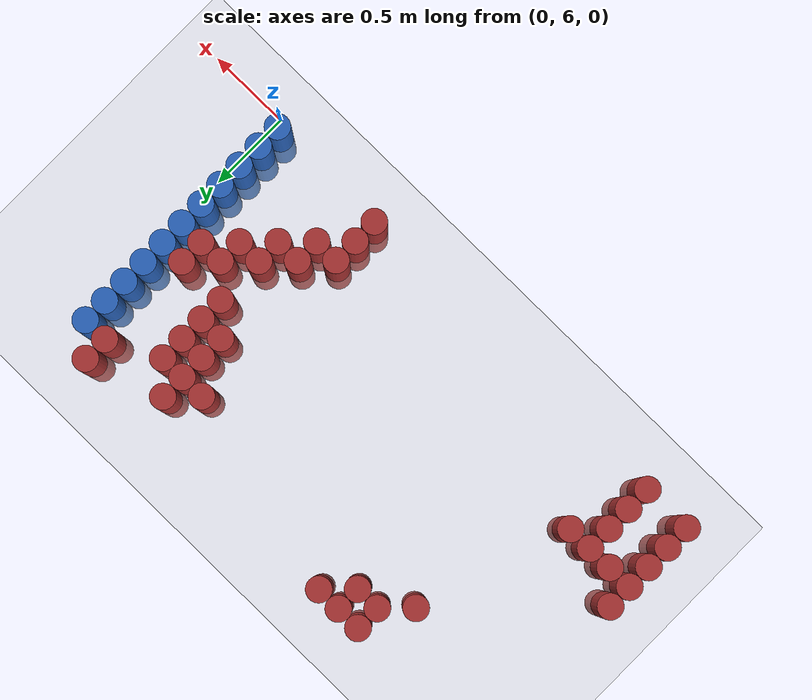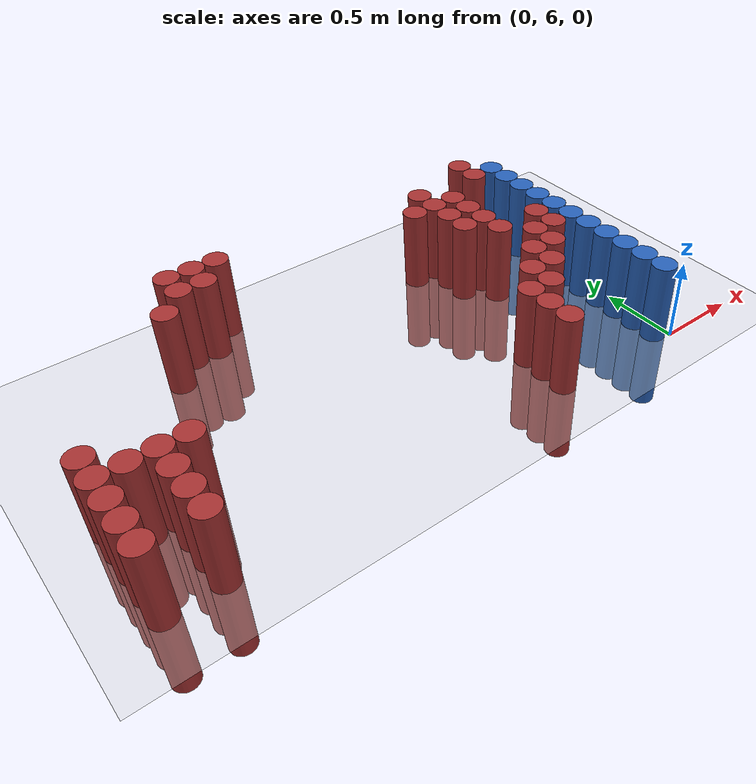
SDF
<sdf version="1.6">
 <world name="default">
  <model name="ground_plane">
   <static>1</static>
   <link name="link">
    <collision name="collision">
     <geometry><plane><normal>0 0 1</normal><size>100 100</size></plane></geometry>
     <surface><friction><ode><mu>100</mu><mu2>50</mu2></ode></friction></surface>
    </collision>
    <visual name="visual">
     <cast_shadows>0</cast_shadows>
     <geometry><plane><normal>0 0 1</normal><size>100 100</size></plane></geometry>
     <material>
      <script><uri>file://media/materials/scripts/gazebo.material</uri><name>Gazebo/Grey</name></script>
     </material>
    </visual>
   </link>
  </model>
  <model name="unit_cylinder_180">
   <static>1</static>
   <pose>-3.225000 6.075000 0.000000 0.000000 0.000000 0.000000</pose>
   <link name="link">
    <inertial>
     <mass>1</mass>
     <inertia><ixx>0.145833</ixx><ixy>0</ixy><ixz>0</ixz><iyy>0.145833</iyy><iyz>0</iyz><izz>0.125</izz></inertia>
    </inertial>
    <collision name="collision">
     <geometry><cylinder><radius>0.075000</radius><length>1</length></cylinder></geometry>
    </collision>
    <visual name="visual">
     <geometry><cylinder><radius>0.075000</radius><length>1</length></cylinder></geometry>
     <material>
      <ambient>0.648000 0.192000 0.192000 1</ambient>
      <diffuse>0.648000 0.192000 0.192000 1</diffuse>
     </material>
     <material>
      <script><name>Gazebo/Grey</name><uri>file://media/materials/scripts/gazebo.material</uri></script>
     </material>
    </visual>
   </link>
  </model>
  <model name="unit_cylinder_181">
   <static>1</static>
   <pose>-3.225000 6.225000 0.000000 0.000000 0.000000 0.000000</pose>
   <link name="link">
    <inertial>
     <mass>1</mass>
     <inertia><ixx>0.145833</ixx><ixy>0</ixy><ixz>0</ixz><iyy>0.145833</iyy><iyz>0</iyz><izz>0.125</izz></inertia>
    </inertial>
    <collision name="collision">
     <geometry><cylinder><radius>0.075000</radius><length>1</length></cylinder></geometry>
    </collision>
    <visual name="visual">
     <geometry><cylinder><radius>0.075000</radius><length>1</length></cylinder></geometry>
     <material>
      <ambient>0.648000 0.192000 0.192000 1</ambient>
      <diffuse>0.648000 0.192000 0.192000 1</diffuse>
     </material>
     <material>
      <script><name>Gazebo/Grey</name><uri>file://media/materials/scripts/gazebo.material</uri></script>
     </material>
    </visual>
   </link>
  </model>
  <model name="unit_cylinder_182">
   <static>1</static>
   <pose>-3.225000 6.375000 0.000000 0.000000 0.000000 0.000000</pose>
   <link name="link">
    <inertial>
     <mass>1</mass>
     <inertia><ixx>0.145833</ixx><ixy>0</ixy><ixz>0</ixz><iyy>0.145833</iyy><iyz>0</iyz><izz>0.125</izz></inertia>
    </inertial>
    <collision name="collision">
     <geometry><cylinder><radius>0.075000</radius><length>1</length></cylinder></geometry>
    </collision>
    <visual name="visual">
     <geometry><cylinder><radius>0.075000</radius><length>1</length></cylinder></geometry>
     <material>
      <ambient>0.648000 0.192000 0.192000 1</ambient>
      <diffuse>0.648000 0.192000 0.192000 1</diffuse>
     </material>
     <material>
      <script><name>Gazebo/Grey</name><uri>file://media/materials/scripts/gazebo.material</uri></script>
     </material>
    </visual>
   </link>
  </model>
  <model name="unit_cylinder_183">
   <static>1</static>
   <pose>-3.225000 6.525000 0.000000 0.000000 0.000000 0.000000</pose>
   <link name="link">
    <inertial>
     <mass>1</mass>
     <inertia><ixx>0.145833</ixx><ixy>0</ixy><ixz>0</ixz><iyy>0.145833</iyy><iyz>0</iyz><izz>0.125</izz></inertia>
    </inertial>
    <collision name="collision">
     <geometry><cylinder><radius>0.075000</radius><length>1</length></cylinder></geometry>
    </collision>
    <visual name="visual">
     <geometry><cylinder><radius>0.075000</radius><length>1</length></cylinder></geometry>
     <material>
      <ambient>0.648000 0.192000 0.192000 1</ambient>
      <diffuse>0.648000 0.192000 0.192000 1</diffuse>
     </material>
     <material>
      <script><name>Gazebo/Grey</name><uri>file://media/materials/scripts/gazebo.material</uri></script>
     </material>
    </visual>
   </link>
  </model>
  <model name="unit_cylinder_184">
   <static>1</static>
   <pose>-3.225000 6.675000 0.000000 0.000000 0.000000 0.000000</pose>
   <link name="link">
    <inertial>
     <mass>1</mass>
     <inertia><ixx>0.145833</ixx><ixy>0</ixy><ixz>0</ixz><iyy>0.145833</iyy><iyz>0</iyz><izz>0.125</izz></inertia>
    </inertial>
    <collision name="collision">
     <geometry><cylinder><radius>0.075000</radius><length>1</length></cylinder></geometry>
    </collision>
    <visual name="visual">
     <geometry><cylinder><radius>0.075000</radius><length>1</length></cylinder></geometry>
     <material>
      <ambient>0.648000 0.192000 0.192000 1</ambient>
      <diffuse>0.648000 0.192000 0.192000 1</diffuse>
     </material>
     <material>
      <script><name>Gazebo/Grey</name><uri>file://media/materials/scripts/gazebo.material</uri></script>
     </material>
    </visual>
   </link>
  </model>
  <model name="unit_cylinder_192">
   <static>1</static>
   <pose>-3.075000 6.525000 0.000000 0.000000 0.000000 0.000000</pose>
   <link name="link">
    <inertial>
     <mass>1</mass>
     <inertia><ixx>0.145833</ixx><ixy>0</ixy><ixz>0</ixz><iyy>0.145833</iyy><iyz>0</iyz><izz>0.125</izz></inertia>
    </inertial>
    <collision name="collision">
     <geometry><cylinder><radius>0.075000</radius><length>1</length></cylinder></geometry>
    </collision>
    <visual name="visual">
     <geometry><cylinder><radius>0.075000</radius><length>1</length></cylinder></geometry>
     <material>
      <ambient>0.648000 0.192000 0.192000 1</ambient>
      <diffuse>0.648000 0.192000 0.192000 1</diffuse>
     </material>
     <material>
      <script><name>Gazebo/Grey</name><uri>file://media/materials/scripts/gazebo.material</uri></script>
     </material>
    </visual>
   </link>
  </model>
  <model name="unit_cylinder_199">
   <static>1</static>
   <pose>-2.925000 6.075000 0.000000 0.000000 0.000000 0.000000</pose>
   <link name="link">
    <inertial>
     <mass>1</mass>
     <inertia><ixx>0.145833</ixx><ixy>0</ixy><ixz>0</ixz><iyy>0.145833</iyy><iyz>0</iyz><izz>0.125</izz></inertia>
    </inertial>
    <collision name="collision">
     <geometry><cylinder><radius>0.075000</radius><length>1</length></cylinder></geometry>
    </collision>
    <visual name="visual">
     <geometry><cylinder><radius>0.075000</radius><length>1</length></cylinder></geometry>
     <material>
      <ambient>0.648000 0.192000 0.192000 1</ambient>
      <diffuse>0.648000 0.192000 0.192000 1</diffuse>
     </material>
     <material>
      <script><name>Gazebo/Grey</name><uri>file://media/materials/scripts/gazebo.material</uri></script>
     </material>
    </visual>
   </link>
  </model>
  <model name="unit_cylinder_200">
   <static>1</static>
   <pose>-2.925000 6.225000 0.000000 0.000000 0.000000 0.000000</pose>
   <link name="link">
    <inertial>
     <mass>1</mass>
     <inertia><ixx>0.145833</ixx><ixy>0</ixy><ixz>0</ixz><iyy>0.145833</iyy><iyz>0</iyz><izz>0.125</izz></inertia>
    </inertial>
    <collision name="collision">
     <geometry><cylinder><radius>0.075000</radius><length>1</length></cylinder></geometry>
    </collision>
    <visual name="visual">
     <geometry><cylinder><radius>0.075000</radius><length>1</length></cylinder></geometry>
     <material>
      <ambient>0.648000 0.192000 0.192000 1</ambient>
      <diffuse>0.648000 0.192000 0.192000 1</diffuse>
     </material>
     <material>
      <script><name>Gazebo/Grey</name><uri>file://media/materials/scripts/gazebo.material</uri></script>
     </material>
    </visual>
   </link>
  </model>
  <model name="unit_cylinder_201">
   <static>1</static>
   <pose>-2.925000 6.375000 0.000000 0.000000 0.000000 0.000000</pose>
   <link name="link">
    <inertial>
     <mass>1</mass>
     <inertia><ixx>0.145833</ixx><ixy>0</ixy><ixz>0</ixz><iyy>0.145833</iyy><iyz>0</iyz><izz>0.125</izz></inertia>
    </inertial>
    <collision name="collision">
     <geometry><cylinder><radius>0.075000</radius><length>1</length></cylinder></geometry>
    </collision>
    <visual name="visual">
     <geometry><cylinder><radius>0.075000</radius><length>1</length></cylinder></geometry>
     <material>
      <ambient>0.648000 0.192000 0.192000 1</ambient>
      <diffuse>0.648000 0.192000 0.192000 1</diffuse>
     </material>
     <material>
      <script><name>Gazebo/Grey</name><uri>file://media/materials/scripts/gazebo.material</uri></script>
     </material>
    </visual>
   </link>
  </model>
  <model name="unit_cylinder_202">
   <static>1</static>
   <pose>-2.925000 6.525000 0.000000 0.000000 0.000000 0.000000</pose>
   <link name="link">
    <inertial>
     <mass>1</mass>
     <inertia><ixx>0.145833</ixx><ixy>0</ixy><ixz>0</ixz><iyy>0.145833</iyy><iyz>0</iyz><izz>0.125</izz></inertia>
    </inertial>
    <collision name="collision">
     <geometry><cylinder><radius>0.075000</radius><length>1</length></cylinder></geometry>
    </collision>
    <visual name="visual">
     <geometry><cylinder><radius>0.075000</radius><length>1</length></cylinder></geometry>
     <material>
      <ambient>0.648000 0.192000 0.192000 1</ambient>
      <diffuse>0.648000 0.192000 0.192000 1</diffuse>
     </material>
     <material>
      <script><name>Gazebo/Grey</name><uri>file://media/materials/scripts/gazebo.material</uri></script>
     </material>
    </visual>
   </link>
  </model>
  <model name="unit_cylinder_204">
   <static>1</static>
   <pose>-2.775000 6.525000 0.000000 0.000000 0.000000 0.000000</pose>
   <link name="link">
    <inertial>
     <mass>1</mass>
     <inertia><ixx>0.145833</ixx><ixy>0</ixy><ixz>0</ixz><iyy>0.145833</iyy><iyz>0</iyz><izz>0.125</izz></inertia>
    </inertial>
    <collision name="collision">
     <geometry><cylinder><radius>0.075000</radius><length>1</length></cylinder></geometry>
    </collision>
    <visual name="visual">
     <geometry><cylinder><radius>0.075000</radius><length>1</length></cylinder></geometry>
     <material>
      <ambient>0.648000 0.192000 0.192000 1</ambient>
      <diffuse>0.648000 0.192000 0.192000 1</diffuse>
     </material>
     <material>
      <script><name>Gazebo/Grey</name><uri>file://media/materials/scripts/gazebo.material</uri></script>
     </material>
    </visual>
   </link>
  </model>
  <model name="unit_cylinder_208">
   <static>1</static>
   <pose>-2.475000 7.425000 0.000000 0.000000 0.000000 0.000000</pose>
   <link name="link">
    <inertial>
     <mass>1</mass>
     <inertia><ixx>0.145833</ixx><ixy>0</ixy><ixz>0</ixz><iyy>0.145833</iyy><iyz>0</iyz><izz>0.125</izz></inertia>
    </inertial>
    <collision name="collision">
     <geometry><cylinder><radius>0.075000</radius><length>1</length></cylinder></geometry>
    </collision>
    <visual name="visual">
     <geometry><cylinder><radius>0.075000</radius><length>1</length></cylinder></geometry>
     <material>
      <ambient>0.648000 0.192000 0.192000 1</ambient>
      <diffuse>0.648000 0.192000 0.192000 1</diffuse>
     </material>
     <material>
      <script><name>Gazebo/Grey</name><uri>file://media/materials/scripts/gazebo.material</uri></script>
     </material>
    </visual>
   </link>
  </model>
  <model name="unit_cylinder_211">
   <static>1</static>
   <pose>-2.325000 7.575000 0.000000 0.000000 0.000000 0.000000</pose>
   <link name="link">
    <inertial>
     <mass>1</mass>
     <inertia><ixx>0.145833</ixx><ixy>0</ixy><ixz>0</ixz><iyy>0.145833</iyy><iyz>0</iyz><izz>0.125</izz></inertia>
    </inertial>
    <collision name="collision">
     <geometry><cylinder><radius>0.075000</radius><length>1</length></cylinder></geometry>
    </collision>
    <visual name="visual">
     <geometry><cylinder><radius>0.075000</radius><length>1</length></cylinder></geometry>
     <material>
      <ambient>0.648000 0.192000 0.192000 1</ambient>
      <diffuse>0.648000 0.192000 0.192000 1</diffuse>
     </material>
     <material>
      <script><name>Gazebo/Grey</name><uri>file://media/materials/scripts/gazebo.material</uri></script>
     </material>
    </visual>
   </link>
  </model>
  <model name="unit_cylinder_212">
   <static>1</static>
   <pose>-2.325000 7.725000 0.000000 0.000000 0.000000 0.000000</pose>
   <link name="link">
    <inertial>
     <mass>1</mass>
     <inertia><ixx>0.145833</ixx><ixy>0</ixy><ixz>0</ixz><iyy>0.145833</iyy><iyz>0</iyz><izz>0.125</izz></inertia>
    </inertial>
    <collision name="collision">
     <geometry><cylinder><radius>0.075000</radius><length>1</length></cylinder></geometry>
    </collision>
    <visual name="visual">
     <geometry><cylinder><radius>0.075000</radius><length>1</length></cylinder></geometry>
     <material>
      <ambient>0.648000 0.192000 0.192000 1</ambient>
      <diffuse>0.648000 0.192000 0.192000 1</diffuse>
     </material>
     <material>
      <script><name>Gazebo/Grey</name><uri>file://media/materials/scripts/gazebo.material</uri></script>
     </material>
    </visual>
   </link>
  </model>
  <model name="unit_cylinder_215">
   <static>1</static>
   <pose>-2.175000 7.575000 0.000000 0.000000 0.000000 0.000000</pose>
   <link name="link">
    <inertial>
     <mass>1</mass>
     <inertia><ixx>0.145833</ixx><ixy>0</ixy><ixz>0</ixz><iyy>0.145833</iyy><iyz>0</iyz><izz>0.125</izz></inertia>
    </inertial>
    <collision name="collision">
     <geometry><cylinder><radius>0.075000</radius><length>1</length></cylinder></geometry>
    </collision>
    <visual name="visual">
     <geometry><cylinder><radius>0.075000</radius><length>1</length></cylinder></geometry>
     <material>
      <ambient>0.648000 0.192000 0.192000 1</ambient>
      <diffuse>0.648000 0.192000 0.192000 1</diffuse>
     </material>
     <material>
      <script><name>Gazebo/Grey</name><uri>file://media/materials/scripts/gazebo.material</uri></script>
     </material>
    </visual>
   </link>
  </model>
  <model name="unit_cylinder_216">
   <static>1</static>
   <pose>-2.175000 7.725000 0.000000 0.000000 0.000000 0.000000</pose>
   <link name="link">
    <inertial>
     <mass>1</mass>
     <inertia><ixx>0.145833</ixx><ixy>0</ixy><ixz>0</ixz><iyy>0.145833</iyy><iyz>0</iyz><izz>0.125</izz></inertia>
    </inertial>
    <collision name="collision">
     <geometry><cylinder><radius>0.075000</radius><length>1</length></cylinder></geometry>
    </collision>
    <visual name="visual">
     <geometry><cylinder><radius>0.075000</radius><length>1</length></cylinder></geometry>
     <material>
      <ambient>0.648000 0.192000 0.192000 1</ambient>
      <diffuse>0.648000 0.192000 0.192000 1</diffuse>
     </material>
     <material>
      <script><name>Gazebo/Grey</name><uri>file://media/materials/scripts/gazebo.material</uri></script>
     </material>
    </visual>
   </link>
  </model>
  <model name="unit_cylinder_217">
   <static>1</static>
   <pose>-2.025000 7.725000 0.000000 0.000000 0.000000 0.000000</pose>
   <link name="link">
    <inertial>
     <mass>1</mass>
     <inertia><ixx>0.145833</ixx><ixy>0</ixy><ixz>0</ixz><iyy>0.145833</iyy><iyz>0</iyz><izz>0.125</izz></inertia>
    </inertial>
    <collision name="collision">
     <geometry><cylinder><radius>0.075000</radius><length>1</length></cylinder></geometry>
    </collision>
    <visual name="visual">
     <geometry><cylinder><radius>0.075000</radius><length>1</length></cylinder></geometry>
     <material>
      <ambient>0.648000 0.192000 0.192000 1</ambient>
      <diffuse>0.648000 0.192000 0.192000 1</diffuse>
     </material>
     <material>
      <script><name>Gazebo/Grey</name><uri>file://media/materials/scripts/gazebo.material</uri></script>
     </material>
    </visual>
   </link>
  </model>
  <model name="unit_cylinder_228">
   <static>1</static>
   <pose>-0.825000 6.075000 0.000000 0.000000 0.000000 0.000000</pose>
   <link name="link">
    <inertial>
     <mass>1</mass>
     <inertia><ixx>0.145833</ixx><ixy>0</ixy><ixz>0</ixz><iyy>0.145833</iyy><iyz>0</iyz><izz>0.125</izz></inertia>
    </inertial>
    <collision name="collision">
     <geometry><cylinder><radius>0.075000</radius><length>1</length></cylinder></geometry>
    </collision>
    <visual name="visual">
     <geometry><cylinder><radius>0.075000</radius><length>1</length></cylinder></geometry>
     <material>
      <ambient>0.648000 0.192000 0.192000 1</ambient>
      <diffuse>0.648000 0.192000 0.192000 1</diffuse>
     </material>
     <material>
      <script><name>Gazebo/Grey</name><uri>file://media/materials/scripts/gazebo.material</uri></script>
     </material>
    </visual>
   </link>
  </model>
  <model name="unit_cylinder_229">
   <static>1</static>
   <pose>-0.825000 6.225000 0.000000 0.000000 0.000000 0.000000</pose>
   <link name="link">
    <inertial>
     <mass>1</mass>
     <inertia><ixx>0.145833</ixx><ixy>0</ixy><ixz>0</ixz><iyy>0.145833</iyy><iyz>0</iyz><izz>0.125</izz></inertia>
    </inertial>
    <collision name="collision">
     <geometry><cylinder><radius>0.075000</radius><length>1</length></cylinder></geometry>
    </collision>
    <visual name="visual">
     <geometry><cylinder><radius>0.075000</radius><length>1</length></cylinder></geometry>
     <material>
      <ambient>0.648000 0.192000 0.192000 1</ambient>
      <diffuse>0.648000 0.192000 0.192000 1</diffuse>
     </material>
     <material>
      <script><name>Gazebo/Grey</name><uri>file://media/materials/scripts/gazebo.material</uri></script>
     </material>
    </visual>
   </link>
  </model>
  <model name="unit_cylinder_230">
   <static>1</static>
   <pose>-0.825000 6.375000 0.000000 0.000000 0.000000 0.000000</pose>
   <link name="link">
    <inertial>
     <mass>1</mass>
     <inertia><ixx>0.145833</ixx><ixy>0</ixy><ixz>0</ixz><iyy>0.145833</iyy><iyz>0</iyz><izz>0.125</izz></inertia>
    </inertial>
    <collision name="collision">
     <geometry><cylinder><radius>0.075000</radius><length>1</length></cylinder></geometry>
    </collision>
    <visual name="visual">
     <geometry><cylinder><radius>0.075000</radius><length>1</length></cylinder></geometry>
     <material>
      <ambient>0.648000 0.192000 0.192000 1</ambient>
      <diffuse>0.648000 0.192000 0.192000 1</diffuse>
     </material>
     <material>
      <script><name>Gazebo/Grey</name><uri>file://media/materials/scripts/gazebo.material</uri></script>
     </material>
    </visual>
   </link>
  </model>
  <model name="unit_cylinder_231">
   <static>1</static>
   <pose>-0.825000 7.425000 0.000000 0.000000 0.000000 0.000000</pose>
   <link name="link">
    <inertial>
     <mass>1</mass>
     <inertia><ixx>0.145833</ixx><ixy>0</ixy><ixz>0</ixz><iyy>0.145833</iyy><iyz>0</iyz><izz>0.125</izz></inertia>
    </inertial>
    <collision name="collision">
     <geometry><cylinder><radius>0.075000</radius><length>1</length></cylinder></geometry>
    </collision>
    <visual name="visual">
     <geometry><cylinder><radius>0.075000</radius><length>1</length></cylinder></geometry>
     <material>
      <ambient>0.648000 0.192000 0.192000 1</ambient>
      <diffuse>0.648000 0.192000 0.192000 1</diffuse>
     </material>
     <material>
      <script><name>Gazebo/Grey</name><uri>file://media/materials/scripts/gazebo.material</uri></script>
     </material>
    </visual>
   </link>
  </model>
  <model name="unit_cylinder_234">
   <static>1</static>
   <pose>-0.675000 6.375000 0.000000 0.000000 0.000000 0.000000</pose>
   <link name="link">
    <inertial>
     <mass>1</mass>
     <inertia><ixx>0.145833</ixx><ixy>0</ixy><ixz>0</ixz><iyy>0.145833</iyy><iyz>0</iyz><izz>0.125</izz></inertia>
    </inertial>
    <collision name="collision">
     <geometry><cylinder><radius>0.075000</radius><length>1</length></cylinder></geometry>
    </collision>
    <visual name="visual">
     <geometry><cylinder><radius>0.075000</radius><length>1</length></cylinder></geometry>
     <material>
      <ambient>0.648000 0.192000 0.192000 1</ambient>
      <diffuse>0.648000 0.192000 0.192000 1</diffuse>
     </material>
     <material>
      <script><name>Gazebo/Grey</name><uri>file://media/materials/scripts/gazebo.material</uri></script>
     </material>
    </visual>
   </link>
  </model>
  <model name="unit_cylinder_235">
   <static>1</static>
   <pose>-0.675000 6.525000 0.000000 0.000000 0.000000 0.000000</pose>
   <link name="link">
    <inertial>
     <mass>1</mass>
     <inertia><ixx>0.145833</ixx><ixy>0</ixy><ixz>0</ixz><iyy>0.145833</iyy><iyz>0</iyz><izz>0.125</izz></inertia>
    </inertial>
    <collision name="collision">
     <geometry><cylinder><radius>0.075000</radius><length>1</length></cylinder></geometry>
    </collision>
    <visual name="visual">
     <geometry><cylinder><radius>0.075000</radius><length>1</length></cylinder></geometry>
     <material>
      <ambient>0.648000 0.192000 0.192000 1</ambient>
      <diffuse>0.648000 0.192000 0.192000 1</diffuse>
     </material>
     <material>
      <script><name>Gazebo/Grey</name><uri>file://media/materials/scripts/gazebo.material</uri></script>
     </material>
    </visual>
   </link>
  </model>
  <model name="unit_cylinder_236">
   <static>1</static>
   <pose>-0.675000 7.125000 0.000000 0.000000 0.000000 0.000000</pose>
   <link name="link">
    <inertial>
     <mass>1</mass>
     <inertia><ixx>0.145833</ixx><ixy>0</ixy><ixz>0</ixz><iyy>0.145833</iyy><iyz>0</iyz><izz>0.125</izz></inertia>
    </inertial>
    <collision name="collision">
     <geometry><cylinder><radius>0.075000</radius><length>1</length></cylinder></geometry>
    </collision>
    <visual name="visual">
     <geometry><cylinder><radius>0.075000</radius><length>1</length></cylinder></geometry>
     <material>
      <ambient>0.648000 0.192000 0.192000 1</ambient>
      <diffuse>0.648000 0.192000 0.192000 1</diffuse>
     </material>
     <material>
      <script><name>Gazebo/Grey</name><uri>file://media/materials/scripts/gazebo.material</uri></script>
     </material>
    </visual>
   </link>
  </model>
  <model name="unit_cylinder_237">
   <static>1</static>
   <pose>-0.675000 7.275000 0.000000 0.000000 0.000000 0.000000</pose>
   <link name="link">
    <inertial>
     <mass>1</mass>
     <inertia><ixx>0.145833</ixx><ixy>0</ixy><ixz>0</ixz><iyy>0.145833</iyy><iyz>0</iyz><izz>0.125</izz></inertia>
    </inertial>
    <collision name="collision">
     <geometry><cylinder><radius>0.075000</radius><length>1</length></cylinder></geometry>
    </collision>
    <visual name="visual">
     <geometry><cylinder><radius>0.075000</radius><length>1</length></cylinder></geometry>
     <material>
      <ambient>0.648000 0.192000 0.192000 1</ambient>
      <diffuse>0.648000 0.192000 0.192000 1</diffuse>
     </material>
     <material>
      <script><name>Gazebo/Grey</name><uri>file://media/materials/scripts/gazebo.material</uri></script>
     </material>
    </visual>
   </link>
  </model>
  <model name="unit_cylinder_238">
   <static>1</static>
   <pose>-0.675000 7.425000 0.000000 0.000000 0.000000 0.000000</pose>
   <link name="link">
    <inertial>
     <mass>1</mass>
     <inertia><ixx>0.145833</ixx><ixy>0</ixy><ixz>0</ixz><iyy>0.145833</iyy><iyz>0</iyz><izz>0.125</izz></inertia>
    </inertial>
    <collision name="collision">
     <geometry><cylinder><radius>0.075000</radius><length>1</length></cylinder></geometry>
    </collision>
    <visual name="visual">
     <geometry><cylinder><radius>0.075000</radius><length>1</length></cylinder></geometry>
     <material>
      <ambient>0.648000 0.192000 0.192000 1</ambient>
      <diffuse>0.648000 0.192000 0.192000 1</diffuse>
     </material>
     <material>
      <script><name>Gazebo/Grey</name><uri>file://media/materials/scripts/gazebo.material</uri></script>
     </material>
    </visual>
   </link>
  </model>
  <model name="unit_cylinder_239">
   <static>1</static>
   <pose>-0.675000 7.575000 0.000000 0.000000 0.000000 0.000000</pose>
   <link name="link">
    <inertial>
     <mass>1</mass>
     <inertia><ixx>0.145833</ixx><ixy>0</ixy><ixz>0</ixz><iyy>0.145833</iyy><iyz>0</iyz><izz>0.125</izz></inertia>
    </inertial>
    <collision name="collision">
     <geometry><cylinder><radius>0.075000</radius><length>1</length></cylinder></geometry>
    </collision>
    <visual name="visual">
     <geometry><cylinder><radius>0.075000</radius><length>1</length></cylinder></geometry>
     <material>
      <ambient>0.648000 0.192000 0.192000 1</ambient>
      <diffuse>0.648000 0.192000 0.192000 1</diffuse>
     </material>
     <material>
      <script><name>Gazebo/Grey</name><uri>file://media/materials/scripts/gazebo.material</uri></script>
     </material>
    </visual>
   </link>
  </model>
  <model name="unit_cylinder_241">
   <static>1</static>
   <pose>-0.525000 6.525000 0.000000 0.000000 0.000000 0.000000</pose>
   <link name="link">
    <inertial>
     <mass>1</mass>
     <inertia><ixx>0.145833</ixx><ixy>0</ixy><ixz>0</ixz><iyy>0.145833</iyy><iyz>0</iyz><izz>0.125</izz></inertia>
    </inertial>
    <collision name="collision">
     <geometry><cylinder><radius>0.075000</radius><length>1</length></cylinder></geometry>
    </collision>
    <visual name="visual">
     <geometry><cylinder><radius>0.075000</radius><length>1</length></cylinder></geometry>
     <material>
      <ambient>0.648000 0.192000 0.192000 1</ambient>
      <diffuse>0.648000 0.192000 0.192000 1</diffuse>
     </material>
     <material>
      <script><name>Gazebo/Grey</name><uri>file://media/materials/scripts/gazebo.material</uri></script>
     </material>
    </visual>
   </link>
  </model>
  <model name="unit_cylinder_242">
   <static>1</static>
   <pose>-0.525000 6.675000 0.000000 0.000000 0.000000 0.000000</pose>
   <link name="link">
    <inertial>
     <mass>1</mass>
     <inertia><ixx>0.145833</ixx><ixy>0</ixy><ixz>0</ixz><iyy>0.145833</iyy><iyz>0</iyz><izz>0.125</izz></inertia>
    </inertial>
    <collision name="collision">
     <geometry><cylinder><radius>0.075000</radius><length>1</length></cylinder></geometry>
    </collision>
    <visual name="visual">
     <geometry><cylinder><radius>0.075000</radius><length>1</length></cylinder></geometry>
     <material>
      <ambient>0.648000 0.192000 0.192000 1</ambient>
      <diffuse>0.648000 0.192000 0.192000 1</diffuse>
     </material>
     <material>
      <script><name>Gazebo/Grey</name><uri>file://media/materials/scripts/gazebo.material</uri></script>
     </material>
    </visual>
   </link>
  </model>
  <model name="unit_cylinder_243">
   <static>1</static>
   <pose>-0.525000 6.975000 0.000000 0.000000 0.000000 0.000000</pose>
   <link name="link">
    <inertial>
     <mass>1</mass>
     <inertia><ixx>0.145833</ixx><ixy>0</ixy><ixz>0</ixz><iyy>0.145833</iyy><iyz>0</iyz><izz>0.125</izz></inertia>
    </inertial>
    <collision name="collision">
     <geometry><cylinder><radius>0.075000</radius><length>1</length></cylinder></geometry>
    </collision>
    <visual name="visual">
     <geometry><cylinder><radius>0.075000</radius><length>1</length></cylinder></geometry>
     <material>
      <ambient>0.648000 0.192000 0.192000 1</ambient>
      <diffuse>0.648000 0.192000 0.192000 1</diffuse>
     </material>
     <material>
      <script><name>Gazebo/Grey</name><uri>file://media/materials/scripts/gazebo.material</uri></script>
     </material>
    </visual>
   </link>
  </model>
  <model name="unit_cylinder_244">
   <static>1</static>
   <pose>-0.525000 7.125000 0.000000 0.000000 0.000000 0.000000</pose>
   <link name="link">
    <inertial>
     <mass>1</mass>
     <inertia><ixx>0.145833</ixx><ixy>0</ixy><ixz>0</ixz><iyy>0.145833</iyy><iyz>0</iyz><izz>0.125</izz></inertia>
    </inertial>
    <collision name="collision">
     <geometry><cylinder><radius>0.075000</radius><length>1</length></cylinder></geometry>
    </collision>
    <visual name="visual">
     <geometry><cylinder><radius>0.075000</radius><length>1</length></cylinder></geometry>
     <material>
      <ambient>0.648000 0.192000 0.192000 1</ambient>
      <diffuse>0.648000 0.192000 0.192000 1</diffuse>
     </material>
     <material>
      <script><name>Gazebo/Grey</name><uri>file://media/materials/scripts/gazebo.material</uri></script>
     </material>
    </visual>
   </link>
  </model>
  <model name="unit_cylinder_245">
   <static>1</static>
   <pose>-0.525000 7.275000 0.000000 0.000000 0.000000 0.000000</pose>
   <link name="link">
    <inertial>
     <mass>1</mass>
     <inertia><ixx>0.145833</ixx><ixy>0</ixy><ixz>0</ixz><iyy>0.145833</iyy><iyz>0</iyz><izz>0.125</izz></inertia>
    </inertial>
    <collision name="collision">
     <geometry><cylinder><radius>0.075000</radius><length>1</length></cylinder></geometry>
    </collision>
    <visual name="visual">
     <geometry><cylinder><radius>0.075000</radius><length>1</length></cylinder></geometry>
     <material>
      <ambient>0.648000 0.192000 0.192000 1</ambient>
      <diffuse>0.648000 0.192000 0.192000 1</diffuse>
     </material>
     <material>
      <script><name>Gazebo/Grey</name><uri>file://media/materials/scripts/gazebo.material</uri></script>
     </material>
    </visual>
   </link>
  </model>
  <model name="unit_cylinder_246">
   <static>1</static>
   <pose>-0.525000 7.425000 0.000000 0.000000 0.000000 0.000000</pose>
   <link name="link">
    <inertial>
     <mass>1</mass>
     <inertia><ixx>0.145833</ixx><ixy>0</ixy><ixz>0</ixz><iyy>0.145833</iyy><iyz>0</iyz><izz>0.125</izz></inertia>
    </inertial>
    <collision name="collision">
     <geometry><cylinder><radius>0.075000</radius><length>1</length></cylinder></geometry>
    </collision>
    <visual name="visual">
     <geometry><cylinder><radius>0.075000</radius><length>1</length></cylinder></geometry>
     <material>
      <ambient>0.648000 0.192000 0.192000 1</ambient>
      <diffuse>0.648000 0.192000 0.192000 1</diffuse>
     </material>
     <material>
      <script><name>Gazebo/Grey</name><uri>file://media/materials/scripts/gazebo.material</uri></script>
     </material>
    </visual>
   </link>
  </model>
  <model name="unit_cylinder_249">
   <static>1</static>
   <pose>-0.375000 6.675000 0.000000 0.000000 0.000000 0.000000</pose>
   <link name="link">
    <inertial>
     <mass>1</mass>
     <inertia><ixx>0.145833</ixx><ixy>0</ixy><ixz>0</ixz><iyy>0.145833</iyy><iyz>0</iyz><izz>0.125</izz></inertia>
    </inertial>
    <collision name="collision">
     <geometry><cylinder><radius>0.075000</radius><length>1</length></cylinder></geometry>
    </collision>
    <visual name="visual">
     <geometry><cylinder><radius>0.075000</radius><length>1</length></cylinder></geometry>
     <material>
      <ambient>0.648000 0.192000 0.192000 1</ambient>
      <diffuse>0.648000 0.192000 0.192000 1</diffuse>
     </material>
     <material>
      <script><name>Gazebo/Grey</name><uri>file://media/materials/scripts/gazebo.material</uri></script>
     </material>
    </visual>
   </link>
  </model>
  <model name="unit_cylinder_250">
   <static>1</static>
   <pose>-0.375000 6.825000 0.000000 0.000000 0.000000 0.000000</pose>
   <link name="link">
    <inertial>
     <mass>1</mass>
     <inertia><ixx>0.145833</ixx><ixy>0</ixy><ixz>0</ixz><iyy>0.145833</iyy><iyz>0</iyz><izz>0.125</izz></inertia>
    </inertial>
    <collision name="collision">
     <geometry><cylinder><radius>0.075000</radius><length>1</length></cylinder></geometry>
    </collision>
    <visual name="visual">
     <geometry><cylinder><radius>0.075000</radius><length>1</length></cylinder></geometry>
     <material>
      <ambient>0.648000 0.192000 0.192000 1</ambient>
      <diffuse>0.648000 0.192000 0.192000 1</diffuse>
     </material>
     <material>
      <script><name>Gazebo/Grey</name><uri>file://media/materials/scripts/gazebo.material</uri></script>
     </material>
    </visual>
   </link>
  </model>
  <model name="unit_cylinder_258">
   <static>1</static>
   <pose>-0.225000 6.825000 0.000000 0.000000 0.000000 0.000000</pose>
   <link name="link">
    <inertial>
     <mass>1</mass>
     <inertia><ixx>0.145833</ixx><ixy>0</ixy><ixz>0</ixz><iyy>0.145833</iyy><iyz>0</iyz><izz>0.125</izz></inertia>
    </inertial>
    <collision name="collision">
     <geometry><cylinder><radius>0.075000</radius><length>1</length></cylinder></geometry>
    </collision>
    <visual name="visual">
     <geometry><cylinder><radius>0.075000</radius><length>1</length></cylinder></geometry>
     <material>
      <ambient>0.648000 0.192000 0.192000 1</ambient>
      <diffuse>0.648000 0.192000 0.192000 1</diffuse>
     </material>
     <material>
      <script><name>Gazebo/Grey</name><uri>file://media/materials/scripts/gazebo.material</uri></script>
     </material>
    </visual>
   </link>
  </model>
  <model name="unit_cylinder_259">
   <static>1</static>
   <pose>-0.225000 6.975000 0.000000 0.000000 0.000000 0.000000</pose>
   <link name="link">
    <inertial>
     <mass>1</mass>
     <inertia><ixx>0.145833</ixx><ixy>0</ixy><ixz>0</ixz><iyy>0.145833</iyy><iyz>0</iyz><izz>0.125</izz></inertia>
    </inertial>
    <collision name="collision">
     <geometry><cylinder><radius>0.075000</radius><length>1</length></cylinder></geometry>
    </collision>
    <visual name="visual">
     <geometry><cylinder><radius>0.075000</radius><length>1</length></cylinder></geometry>
     <material>
      <ambient>0.648000 0.192000 0.192000 1</ambient>
      <diffuse>0.648000 0.192000 0.192000 1</diffuse>
     </material>
     <material>
      <script><name>Gazebo/Grey</name><uri>file://media/materials/scripts/gazebo.material</uri></script>
     </material>
    </visual>
   </link>
  </model>
  <model name="unit_cylinder_260">
   <static>1</static>
   <pose>-0.225000 7.575000 0.000000 0.000000 0.000000 0.000000</pose>
   <link name="link">
    <inertial>
     <mass>1</mass>
     <inertia><ixx>0.145833</ixx><ixy>0</ixy><ixz>0</ixz><iyy>0.145833</iyy><iyz>0</iyz><izz>0.125</izz></inertia>
    </inertial>
    <collision name="collision">
     <geometry><cylinder><radius>0.075000</radius><length>1</length></cylinder></geometry>
    </collision>
    <visual name="visual">
     <geometry><cylinder><radius>0.075000</radius><length>1</length></cylinder></geometry>
     <material>
      <ambient>0.648000 0.192000 0.192000 1</ambient>
      <diffuse>0.648000 0.192000 0.192000 1</diffuse>
     </material>
     <material>
      <script><name>Gazebo/Grey</name><uri>file://media/materials/scripts/gazebo.material</uri></script>
     </material>
    </visual>
   </link>
  </model>
  <model name="unit_cylinder_261">
   <static>1</static>
   <pose>-0.225000 7.725000 0.000000 0.000000 0.000000 0.000000</pose>
   <link name="link">
    <inertial>
     <mass>1</mass>
     <inertia><ixx>0.145833</ixx><ixy>0</ixy><ixz>0</ixz><iyy>0.145833</iyy><iyz>0</iyz><izz>0.125</izz></inertia>
    </inertial>
    <collision name="collision">
     <geometry><cylinder><radius>0.075000</radius><length>1</length></cylinder></geometry>
    </collision>
    <visual name="visual">
     <geometry><cylinder><radius>0.075000</radius><length>1</length></cylinder></geometry>
     <material>
      <ambient>0.648000 0.192000 0.192000 1</ambient>
      <diffuse>0.648000 0.192000 0.192000 1</diffuse>
     </material>
     <material>
      <script><name>Gazebo/Grey</name><uri>file://media/materials/scripts/gazebo.material</uri></script>
     </material>
    </visual>
   </link>
  </model>
  <model name="unit_cylinder_279">
   <static>1</static>
   <pose>-0.075000 6.075000 0.000000 0.000000 0.000000 0.000000</pose>
   <link name="link">
    <inertial>
     <mass>1</mass>
     <inertia><ixx>0.145833</ixx><ixy>0</ixy><ixz>0</ixz><iyy>0.145833</iyy><iyz>0</iyz><izz>0.125</izz></inertia>
    </inertial>
    <collision name="collision">
     <geometry><cylinder><radius>0.075000</radius><length>1</length></cylinder></geometry>
    </collision>
    <visual name="visual">
     <geometry><cylinder><radius>0.075000</radius><length>1</length></cylinder></geometry>
     <material>
      <ambient>0.152000 0.379000 0.720000 1</ambient>
      <diffuse>0.152000 0.379000 0.720000 1</diffuse>
     </material>
     <material>
      <script><name>Gazebo/Grey</name><uri>file://media/materials/scripts/gazebo.material</uri></script>
     </material>
    </visual>
   </link>
  </model>
  <model name="unit_cylinder_280">
   <static>1</static>
   <pose>-0.075000 6.225000 0.000000 0.000000 0.000000 0.000000</pose>
   <link name="link">
    <inertial>
     <mass>1</mass>
     <inertia><ixx>0.145833</ixx><ixy>0</ixy><ixz>0</ixz><iyy>0.145833</iyy><iyz>0</iyz><izz>0.125</izz></inertia>
    </inertial>
    <collision name="collision">
     <geometry><cylinder><radius>0.075000</radius><length>1</length></cylinder></geometry>
    </collision>
    <visual name="visual">
     <geometry><cylinder><radius>0.075000</radius><length>1</length></cylinder></geometry>
     <material>
      <ambient>0.152000 0.379000 0.720000 1</ambient>
      <diffuse>0.152000 0.379000 0.720000 1</diffuse>
     </material>
     <material>
      <script><name>Gazebo/Grey</name><uri>file://media/materials/scripts/gazebo.material</uri></script>
     </material>
    </visual>
   </link>
  </model>
  <model name="unit_cylinder_281">
   <static>1</static>
   <pose>-0.075000 6.375000 0.000000 0.000000 0.000000 0.000000</pose>
   <link name="link">
    <inertial>
     <mass>1</mass>
     <inertia><ixx>0.145833</ixx><ixy>0</ixy><ixz>0</ixz><iyy>0.145833</iyy><iyz>0</iyz><izz>0.125</izz></inertia>
    </inertial>
    <collision name="collision">
     <geometry><cylinder><radius>0.075000</radius><length>1</length></cylinder></geometry>
    </collision>
    <visual name="visual">
     <geometry><cylinder><radius>0.075000</radius><length>1</length></cylinder></geometry>
     <material>
      <ambient>0.152000 0.379000 0.720000 1</ambient>
      <diffuse>0.152000 0.379000 0.720000 1</diffuse>
     </material>
     <material>
      <script><name>Gazebo/Grey</name><uri>file://media/materials/scripts/gazebo.material</uri></script>
     </material>
    </visual>
   </link>
  </model>
  <model name="unit_cylinder_282">
   <static>1</static>
   <pose>-0.075000 6.525000 0.000000 0.000000 0.000000 0.000000</pose>
   <link name="link">
    <inertial>
     <mass>1</mass>
     <inertia><ixx>0.145833</ixx><ixy>0</ixy><ixz>0</ixz><iyy>0.145833</iyy><iyz>0</iyz><izz>0.125</izz></inertia>
    </inertial>
    <collision name="collision">
     <geometry><cylinder><radius>0.075000</radius><length>1</length></cylinder></geometry>
    </collision>
    <visual name="visual">
     <geometry><cylinder><radius>0.075000</radius><length>1</length></cylinder></geometry>
     <material>
      <ambient>0.152000 0.379000 0.720000 1</ambient>
      <diffuse>0.152000 0.379000 0.720000 1</diffuse>
     </material>
     <material>
      <script><name>Gazebo/Grey</name><uri>file://media/materials/scripts/gazebo.material</uri></script>
     </material>
    </visual>
   </link>
  </model>
  <model name="unit_cylinder_283">
   <static>1</static>
   <pose>-0.075000 6.675000 0.000000 0.000000 0.000000 0.000000</pose>
   <link name="link">
    <inertial>
     <mass>1</mass>
     <inertia><ixx>0.145833</ixx><ixy>0</ixy><ixz>0</ixz><iyy>0.145833</iyy><iyz>0</iyz><izz>0.125</izz></inertia>
    </inertial>
    <collision name="collision">
     <geometry><cylinder><radius>0.075000</radius><length>1</length></cylinder></geometry>
    </collision>
    <visual name="visual">
     <geometry><cylinder><radius>0.075000</radius><length>1</length></cylinder></geometry>
     <material>
      <ambient>0.152000 0.379000 0.720000 1</ambient>
      <diffuse>0.152000 0.379000 0.720000 1</diffuse>
     </material>
     <material>
      <script><name>Gazebo/Grey</name><uri>file://media/materials/scripts/gazebo.material</uri></script>
     </material>
    </visual>
   </link>
  </model>
  <model name="unit_cylinder_284">
   <static>1</static>
   <pose>-0.075000 6.825000 0.000000 0.000000 0.000000 0.000000</pose>
   <link name="link">
    <inertial>
     <mass>1</mass>
     <inertia><ixx>0.145833</ixx><ixy>0</ixy><ixz>0</ixz><iyy>0.145833</iyy><iyz>0</iyz><izz>0.125</izz></inertia>
    </inertial>
    <collision name="collision">
     <geometry><cylinder><radius>0.075000</radius><length>1</length></cylinder></geometry>
    </collision>
    <visual name="visual">
     <geometry><cylinder><radius>0.075000</radius><length>1</length></cylinder></geometry>
     <material>
      <ambient>0.152000 0.379000 0.720000 1</ambient>
      <diffuse>0.152000 0.379000 0.720000 1</diffuse>
     </material>
     <material>
      <script><name>Gazebo/Grey</name><uri>file://media/materials/scripts/gazebo.material</uri></script>
     </material>
    </visual>
   </link>
  </model>
  <model name="unit_cylinder_285">
   <static>1</static>
   <pose>-0.075000 6.975000 0.000000 0.000000 0.000000 0.000000</pose>
   <link name="link">
    <inertial>
     <mass>1</mass>
     <inertia><ixx>0.145833</ixx><ixy>0</ixy><ixz>0</ixz><iyy>0.145833</iyy><iyz>0</iyz><izz>0.125</izz></inertia>
    </inertial>
    <collision name="collision">
     <geometry><cylinder><radius>0.075000</radius><length>1</length></cylinder></geometry>
    </collision>
    <visual name="visual">
     <geometry><cylinder><radius>0.075000</radius><length>1</length></cylinder></geometry>
     <material>
      <ambient>0.152000 0.379000 0.720000 1</ambient>
      <diffuse>0.152000 0.379000 0.720000 1</diffuse>
     </material>
     <material>
      <script><name>Gazebo/Grey</name><uri>file://media/materials/scripts/gazebo.material</uri></script>
     </material>
    </visual>
   </link>
  </model>
  <model name="unit_cylinder_286">
   <static>1</static>
   <pose>-0.075000 7.125000 0.000000 0.000000 0.000000 0.000000</pose>
   <link name="link">
    <inertial>
     <mass>1</mass>
     <inertia><ixx>0.145833</ixx><ixy>0</ixy><ixz>0</ixz><iyy>0.145833</iyy><iyz>0</iyz><izz>0.125</izz></inertia>
    </inertial>
    <collision name="collision">
     <geometry><cylinder><radius>0.075000</radius><length>1</length></cylinder></geometry>
    </collision>
    <visual name="visual">
     <geometry><cylinder><radius>0.075000</radius><length>1</length></cylinder></geometry>
     <material>
      <ambient>0.152000 0.379000 0.720000 1</ambient>
      <diffuse>0.152000 0.379000 0.720000 1</diffuse>
     </material>
     <material>
      <script><name>Gazebo/Grey</name><uri>file://media/materials/scripts/gazebo.material</uri></script>
     </material>
    </visual>
   </link>
  </model>
  <model name="unit_cylinder_287">
   <static>1</static>
   <pose>-0.075000 7.275000 0.000000 0.000000 0.000000 0.000000</pose>
   <link name="link">
    <inertial>
     <mass>1</mass>
     <inertia><ixx>0.145833</ixx><ixy>0</ixy><ixz>0</ixz><iyy>0.145833</iyy><iyz>0</iyz><izz>0.125</izz></inertia>
    </inertial>
    <collision name="collision">
     <geometry><cylinder><radius>0.075000</radius><length>1</length></cylinder></geometry>
    </collision>
    <visual name="visual">
     <geometry><cylinder><radius>0.075000</radius><length>1</length></cylinder></geometry>
     <material>
      <ambient>0.152000 0.379000 0.720000 1</ambient>
      <diffuse>0.152000 0.379000 0.720000 1</diffuse>
     </material>
     <material>
      <script><name>Gazebo/Grey</name><uri>file://media/materials/scripts/gazebo.material</uri></script>
     </material>
    </visual>
   </link>
  </model>
  <model name="unit_cylinder_288">
   <static>1</static>
   <pose>-0.075000 7.425000 0.000000 0.000000 0.000000 0.000000</pose>
   <link name="link">
    <inertial>
     <mass>1</mass>
     <inertia><ixx>0.145833</ixx><ixy>0</ixy><ixz>0</ixz><iyy>0.145833</iyy><iyz>0</iyz><izz>0.125</izz></inertia>
    </inertial>
    <collision name="collision">
     <geometry><cylinder><radius>0.075000</radius><length>1</length></cylinder></geometry>
    </collision>
    <visual name="visual">
     <geometry><cylinder><radius>0.075000</radius><length>1</length></cylinder></geometry>
     <material>
      <ambient>0.152000 0.379000 0.720000 1</ambient>
      <diffuse>0.152000 0.379000 0.720000 1</diffuse>
     </material>
     <material>
      <script><name>Gazebo/Grey</name><uri>file://media/materials/scripts/gazebo.material</uri></script>
     </material>
    </visual>
   </link>
  </model>
  <model name="unit_cylinder_289">
   <static>1</static>
   <pose>-0.075000 7.575000 0.000000 0.000000 0.000000 0.000000</pose>
   <link name="link">
    <inertial>
     <mass>1</mass>
     <inertia><ixx>0.145833</ixx><ixy>0</ixy><ixz>0</ixz><iyy>0.145833</iyy><iyz>0</iyz><izz>0.125</izz></inertia>
    </inertial>
    <collision name="collision">
     <geometry><cylinder><radius>0.075000</radius><length>1</length></cylinder></geometry>
    </collision>
    <visual name="visual">
     <geometry><cylinder><radius>0.075000</radius><length>1</length></cylinder></geometry>
     <material>
      <ambient>0.152000 0.379000 0.720000 1</ambient>
      <diffuse>0.152000 0.379000 0.720000 1</diffuse>
     </material>
     <material>
      <script><name>Gazebo/Grey</name><uri>file://media/materials/scripts/gazebo.material</uri></script>
     </material>
    </visual>
   </link>
  </model>
 </world>
</sdf>
